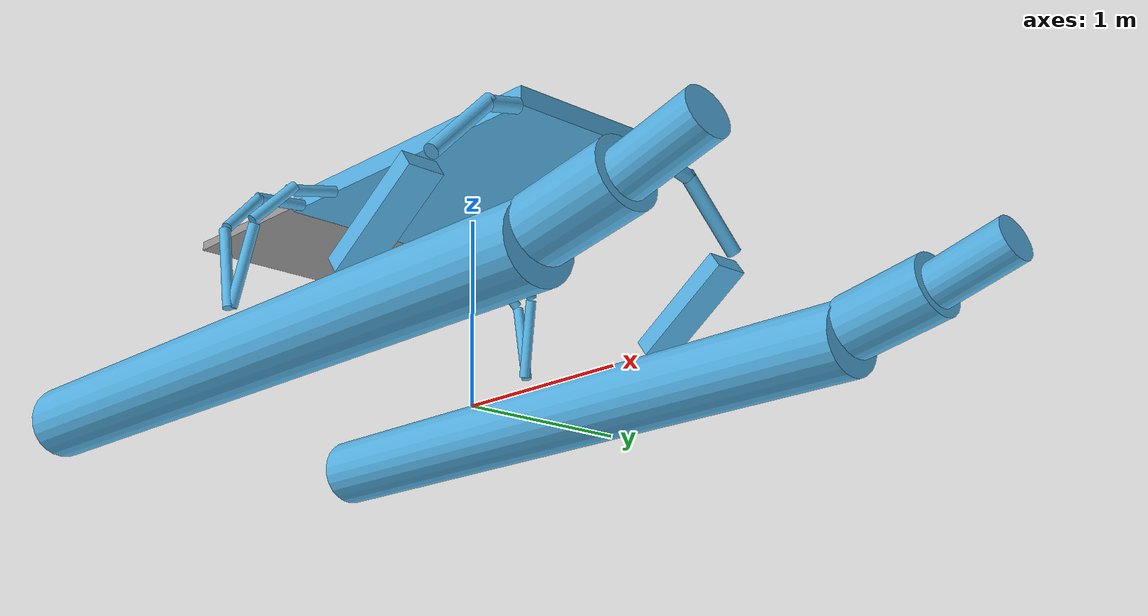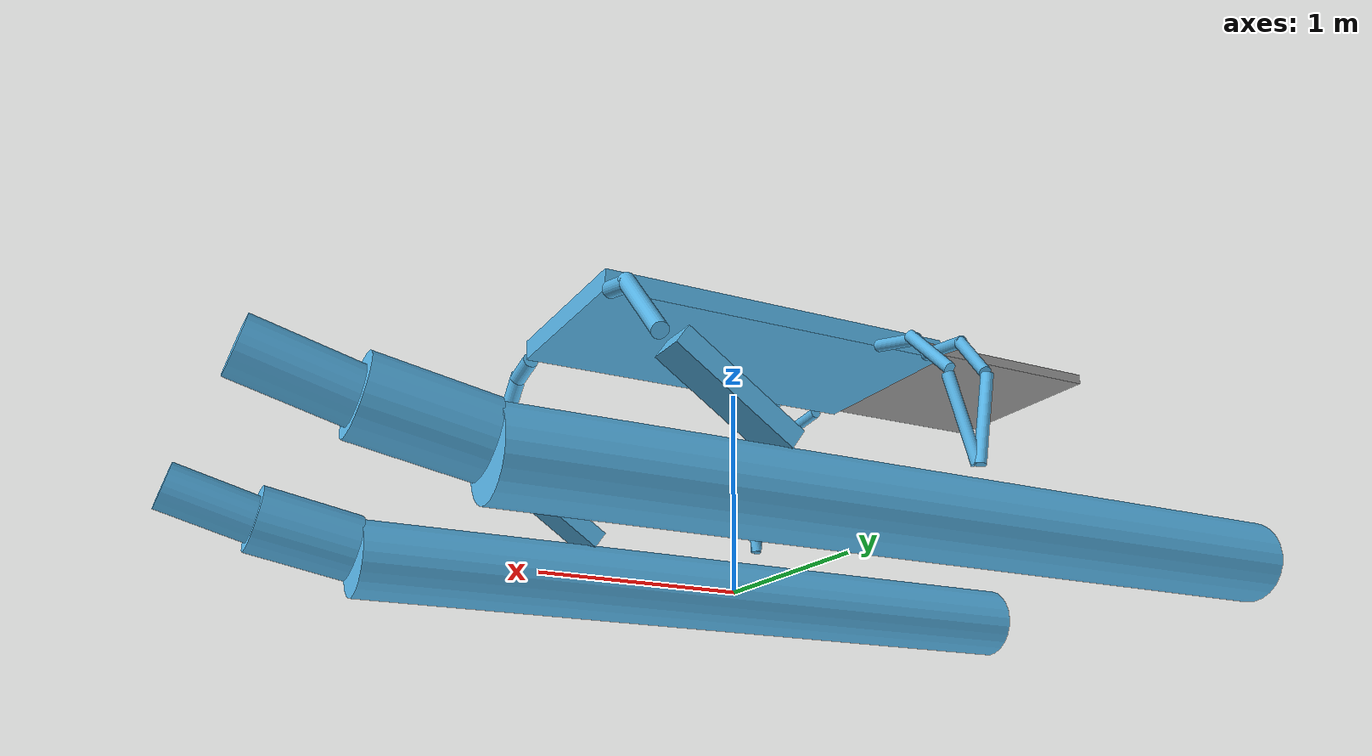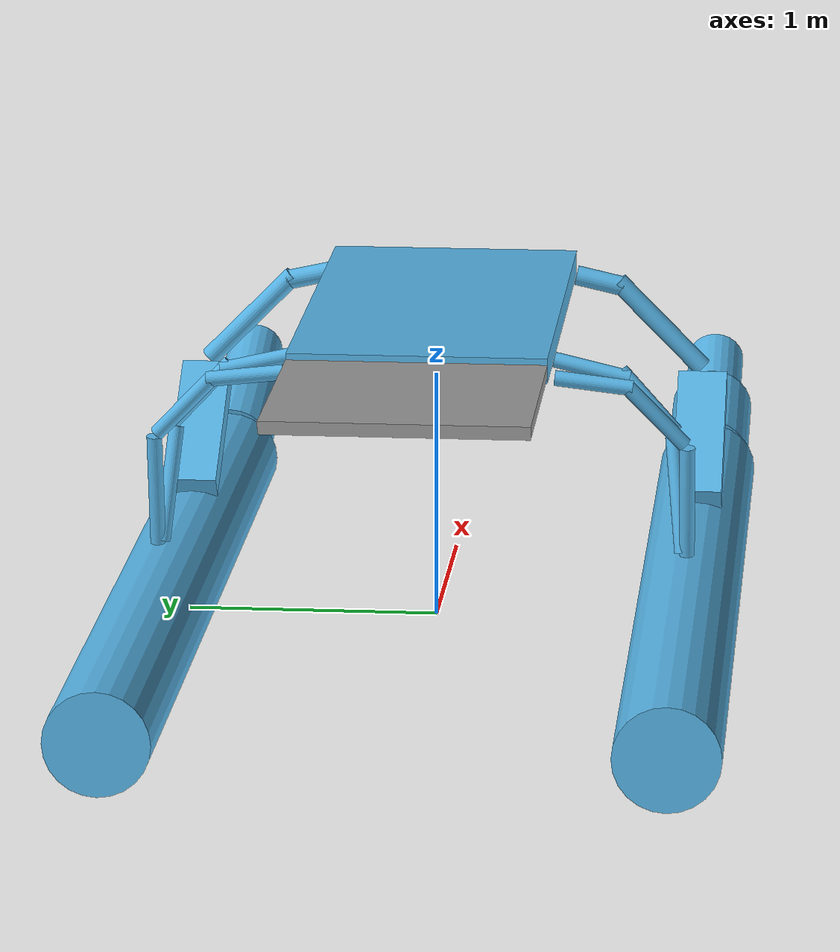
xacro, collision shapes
<?xml version="1.0"?>
<robot xmlns:xacro="http://ros.org/wiki/xacro" name="wam-v">
  <!-- Required arg for melodic and kinetic... -->
  <xacro:arg name="namespace" default="wamv"/>
  <xacro:property name="namespace" value="$(arg namespace)" scope="global" />
  <!-- Macro for creating the main collisions as simple shapes. -->
  <xacro:macro name="main_collisions" params="prefix reflect:=1">
    <!-- Main float -->
    <collision name="${prefix}_float">
      <origin xyz="-0.4 ${1.03*reflect} 0.2" rpy="${0*reflect} 1.57 0" />
      <geometry>
        <cylinder length="4" radius="0.2" />
      </geometry>
    </collision>

    <collision name="${prefix}_mid_float">
      <origin xyz="1.85 ${1.03*reflect} 0.3" rpy="${0*reflect} 1.38 0" />
      <geometry>
        <cylinder length="0.5" radius="0.17" />
      </geometry>
    </collision>
    <collision name="${prefix}_front_float">
      <origin xyz="2.3 ${1.03*reflect} 0.4" rpy="${0*reflect} 1.3 0" />
      <geometry>
        <cylinder length="0.45" radius="0.12" />
      </geometry>
    </collision>

    <!-- Front beam -->
    <collision name="front_${prefix}_beam_lower">
      <origin xyz="0.9 ${0.85*reflect} 1" rpy="${0.78*reflect} 0 0" />
      <geometry>
        <cylinder length="0.5" radius="0.04" />
      </geometry>
    </collision>

    <collision name="front_${prefix}_beam_upper">
      <origin xyz="0.9 ${0.6*reflect} 1.18" rpy="${1.35*reflect} 0 0" />
      <geometry>
        <cylinder length="0.2" radius="0.04" />
      </geometry>
    </collision>

    <!-- Mid beam -->
    <collision name="mid_${prefix}_beam_lower">
      <origin xyz="-0.65 ${0.99*reflect} 0.7" rpy="${0.1*reflect} 0.25 0" />
      <geometry>
        <cylinder length="0.45" radius="0.03" />
      </geometry>
    </collision>

    <collision name="mid_${prefix}_beam_medium">
      <origin xyz="-0.57 ${0.87*reflect} 1.05" rpy="${0.75*reflect} 0.25 0" />
      <geometry>
        <cylinder length="0.32" radius="0.03" />
      </geometry>
    </collision>

    <collision name="mid_${prefix}_beam_upper">
      <origin xyz="-0.55 ${0.65*reflect} 1.17" rpy="${1.35*reflect} 0.25 0" />
      <geometry>
        <cylinder length="0.3" radius="0.03" />
      </geometry>
    </collision>

    <!-- Rear beam -->
    <collision name="rear_${prefix}_beam_lower">
      <origin xyz="-0.74 ${1.03*reflect} 0.7" rpy="${0*reflect} -0.15 0" />
      <geometry>
        <cylinder length="0.45" radius="0.03" />
      </geometry>
    </collision>

    <collision name="rear_${prefix}_beam_medium">
      <origin xyz="-0.79 ${0.91*reflect} 1.05" rpy="${0.75*reflect} -0.15 0" />
      <geometry>
        <cylinder length="0.32" radius="0.03" />
      </geometry>
    </collision>

    <collision name="rear_${prefix}_beam_upper">
      <origin xyz="-0.81 ${0.67*reflect} 1.18" rpy="${1.45*reflect} -0.15 0" />
      <geometry>
        <cylinder length="0.3" radius="0.03" />
      </geometry>
    </collision>

    <!-- Joint -->
    <collision name="${prefix}_joint">
      <origin xyz="0.58 ${1.03*reflect} 0.6" rpy="${0*reflect} -0.6 0" />
      <geometry>
        <box size="0.65 0.2 0.1" />
      </geometry>
    </collision>
  </xacro:macro>

  <link name="${namespace}/base_link">
  </link>

  <joint name="${namespace}/dummy_joint" type = "fixed">
    <parent link="${namespace}/base_link"/>
    <child link="${namespace}/dummy_link"/>
  </joint>

  <!-- Basic model of the 16' WAM-V USV -->
  <link name="${namespace}/dummy_link">
    <visual>
      <geometry>
        <mesh filename="package://wamv_description/models/WAM-V-Base/mesh/WAM-V-Base.dae"/>
      </geometry>
    </visual>

    <!-- Left base collisions -->
    <xacro:main_collisions prefix="left" reflect="1" />

    <!-- Right side collisions -->
    <xacro:main_collisions prefix="right" reflect="-1" />

     <!-- Top base -->
    <collision name="top_base">
      <origin xyz="0 -0 1.25" rpy="0 0 0" />
      <geometry>
        <box size="1.85 1 0.1" />
      </geometry>
    </collision>

    <inertial>
      <!-- From WAM-V spec sheet -->
      <mass value="180.0"/>
      <inertia ixx="120.0" ixy="0.0" ixz="0.0" iyy="393" iyz="0.0" izz="446.0"/>
    </inertial>
  </link>

  <gazebo reference="${namespace}/drone_pad">
    <material>Gazebo/Gray</material>
  </gazebo>

  <link name="${namespace}/drone_pad">

    <visual>
      <origin xyz="-1.35 0 1.25" rpy="0 0 0" />
      <geometry>
        <box size="1 1 0.05" />
      </geometry>
    </visual>

     <!-- Top base -->
    <collision>
      <origin xyz="-1.35 0 1.25" rpy="0 0 0" />
      <geometry>
        <box size="1 1 0.05" />
      </geometry>
    </collision>

    <inertial>
      <!-- From WAM-V spec sheet -->
      <!--TODO: add mass and inertia of this link whenever it is added to NaviGator-->
      <mass value="0.0"/>
      <inertia ixx="120.0" ixy="0.0" ixz="0.0" iyy="393" iyz="0.0" izz="446.0"/>
    </inertial>

  </link>

  <joint name="${namespace}/dummy_joint2" type = "fixed">
    <parent link="${namespace}/dummy_link"/>
    <child link="${namespace}/drone_pad"/>
  </joint>

</robot>
